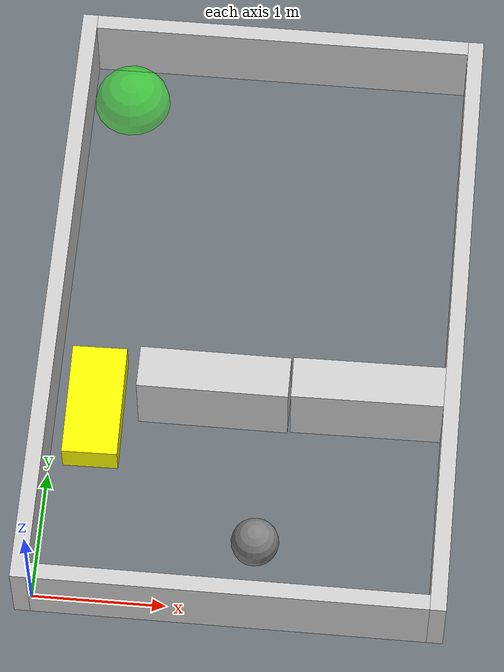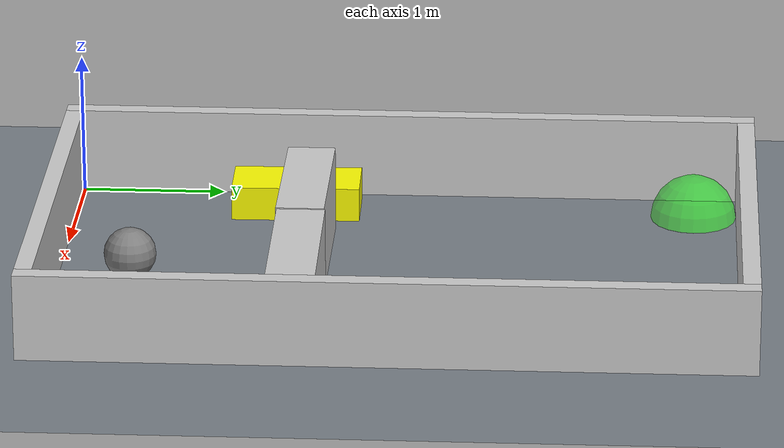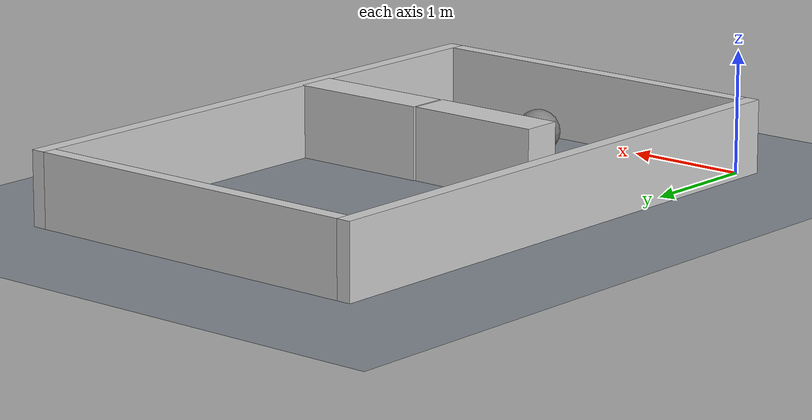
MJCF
<?xml version="1.0" ?>
<mujoco model="generated_environment">
  <option timestep="0.01" integrator="RK4" cone="elliptic"/>
  <default>
    <geom density="1"/>
  </default>
  <asset>
    <texture builtin="gradient" height="3072" rgb1="0.3 0.5 0.7" rgb2="0 0 0" type="skybox" width="512"/>
    <texture builtin="checker" height="300" mark="edge" markrgb="0.8 0.8 0.8" name="groundplane" rgb1="0.2 0.3 0.4" rgb2="0.1 0.2 0.3" type="2d" width="300"/>
    <material name="groundplane" reflectance="0.2" texrepeat="5 5" texture="groundplane" texuniform="true"/>
    <material name="robot" rgba="1.0 1.0 0.0 1.0"/>
  </asset>
  <worldbody>
    <light dir="0 0 -1" directional="true" pos="0 0 1.5"/>
    <geom condim="4" friction="0.5 0.005 0.001" material="groundplane" name="floor" size="0 0 0.05" type="plane"/>
    <body name="walls">
      <geom name="wall_1" condim="4" pos="-0.06 2.325 0.30000000000000004" friction="1 0.005 0.0001" rgba="0.800000011920929 0.800000011920929 0.800000011920929 1.0" size="0.06 2.4450000000000003 0.30000000000000004" type="box"/>
      <geom name="wall_2" condim="4" pos="3.0 2.325 0.30000000000000004" friction="1 0.005 0.0001" rgba="0.800000011920929 0.800000011920929 0.800000011920929 1.0" size="0.06 2.4450000000000003 0.30000000000000004" type="box"/>
      <geom name="wall_3" condim="4" pos="1.47 -0.06 0.30000000000000004" friction="1 0.005 0.0001" rgba="0.800000011920929 0.800000011920929 0.800000011920929 1.0" size="1.47 0.06 0.30000000000000004" type="box"/>
      <geom name="wall_4" condim="4" pos="1.47 4.71 0.30000000000000004" friction="1 0.005 0.0001" rgba="0.800000011920929 0.800000011920929 0.800000011920929 1.0" size="1.47 0.06 0.30000000000000004" type="box"/>
    </body>
    <body name="robot">
      <joint name="joint_x" type="slide" pos="0 0 0" axis="1 0 0"/>
      <joint name="joint_y" type="slide" pos="0 0 0" axis="0 1 0"/>
      <geom name="robot" type="sphere" pos="1.6181892828684452 0.4982812183584915 0.18" size="0.18 0.18 0.18" mass="5.0" friction="1.0 0.005 0.0001" condim="4"/>
    </body>
    <body name="obstacle_1_movable">
      <geom name="obstacle_1_movable" condim="4" pos="0.30714266552175723 1.5469231376115173 0.12" quat="-0.00716472091831448 0 0 0.9999743330576853" friction="1 0.005 0.0001" rgba="1 1 0 1" size="0.21000000000000002 0.44999999999999996 0.12" type="box" mass="0.1"/>
      <joint type="free"/>
    </body>
    <body name="wall_5">
      <geom name="wall_5" condim="4" pos="1.2076677654798174 1.6763997696250943 0.30000000000000004" quat="-0.9999995979826701 0 0 0.0008966797076587784" friction="1 0.005 0.0001" rgba="0.800000011920929 0.800000011920929 0.800000011920929 1.0" size="0.5700000000000001 0.165 0.30000000000000004" type="box"/>
    </body>
    <body name="wall_6">
      <geom name="wall_6" condim="4" pos="2.3804982321088124 1.6896152157395652 0.30000000000000004" quat="0.7034908347924578 0 0 0.71070433047999" friction="1 0.005 0.0001" rgba="0.800000011920929 0.800000011920929 0.800000011920929 1.0" size="0.165 0.585 0.30000000000000004" type="box"/>
    </body>
    <site name="goal" type="sphere" size="0.30000000000000004 0.30000000000000004 0.30000000000000004" rgba="0 1 0 0.5" pos="0.30000000000000004 4.35 0.0"/>
  </worldbody>
  <actuator>
    <velocity name="actuator_x" joint="joint_x" kv="50" ctrlrange="-0.5 0.5" forcerange="-20 20"/>
    <velocity name="actuator_y" joint="joint_y" kv="50" ctrlrange="-0.5 0.5" forcerange="-20 20"/>
  </actuator>
</mujoco>
